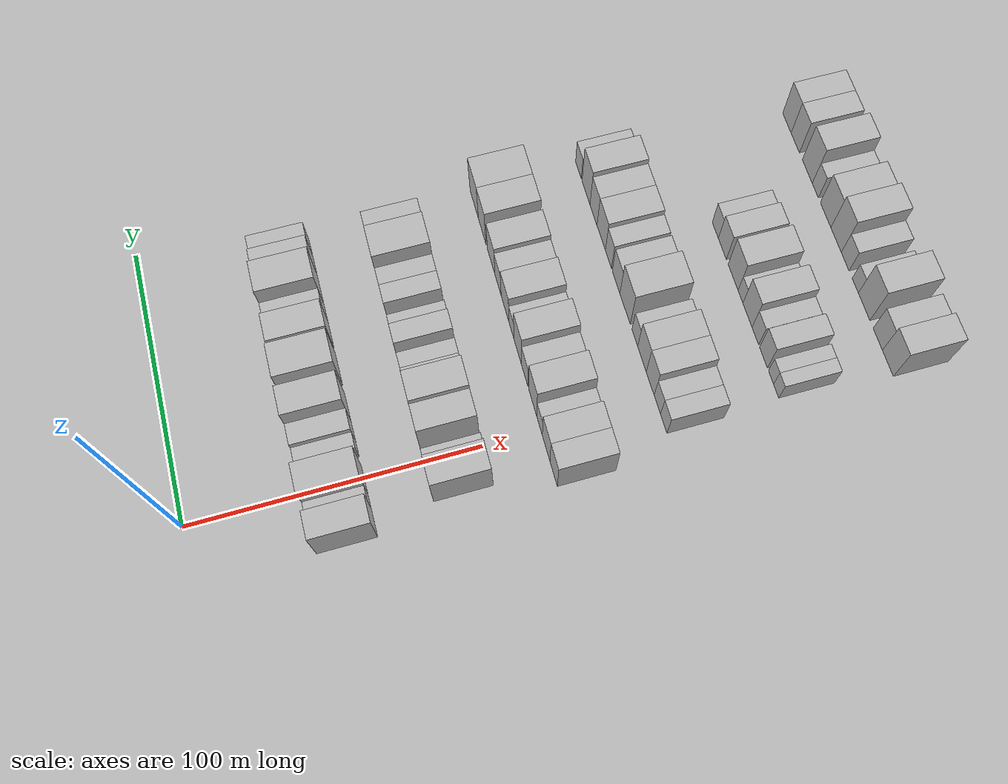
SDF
<sdf version="1.6">
 <world name="default">
  <include><name>ground_plane_1</name><uri>model://HANNAS_ground_plane</uri></include>
  <include>
   <name>ground_plane_2</name>
   <uri>model://HANNAS_ground_plane</uri>
   <pose>100 0 0  0 0 0</pose>
  </include>
  <model name="building_65">
   <static>1</static>
   <pose>50.0000 -15.5206 0 0.000000 0.000000 0.000000</pose>
   <link name="link">
    <pose>0 0 10.50 0 0 0</pose>
    <collision name="collision"><geometry><box><size>20.0000 9.4106 21.0000</size></box></geometry></collision>
    <visual name="visual">
     <cast_shadows>0</cast_shadows>
     <geometry><box><size>20.0000 9.4106 21.0000</size></box></geometry>
     <material>
      <script>
       <uri>model://HANNAS_wall/materials/scripts</uri>
       <uri>model://HANNAS_wall/materials/textures</uri>
       <name>vrc/HANNAS_wall</name>
      </script>
     </material>
    </visual>
   </link>
  </model>
  <model name="building_66">
   <static>1</static>
   <pose>50.0000 -8.2625 0 0.000000 0.000000 0.000000</pose>
   <link name="link">
    <pose>0 0 6.00 0 0 0</pose>
    <collision name="collision"><geometry><box><size>20.0000 5.1057 12.0000</size></box></geometry></collision>
    <visual name="visual">
     <cast_shadows>0</cast_shadows>
     <geometry><box><size>20.0000 5.1057 12.0000</size></box></geometry>
     <material>
      <script>
       <uri>model://HANNAS_wall/materials/scripts</uri>
       <uri>model://HANNAS_wall/materials/textures</uri>
       <name>vrc/HANNAS_wall</name>
      </script>
     </material>
    </visual>
   </link>
  </model>
  <model name="building_67">
   <static>1</static>
   <pose>50.0000 -0.8189 0 0.000000 0.000000 0.000000</pose>
   <link name="link">
    <pose>0 0 12.00 0 0 0</pose>
    <collision name="collision"><geometry><box><size>20.0000 9.7816 24.0000</size></box></geometry></collision>
    <visual name="visual">
     <cast_shadows>0</cast_shadows>
     <geometry><box><size>20.0000 9.7816 24.0000</size></box></geometry>
     <material>
      <script>
       <uri>model://HANNAS_wall/materials/scripts</uri>
       <uri>model://HANNAS_wall/materials/textures</uri>
       <name>vrc/HANNAS_wall</name>
      </script>
     </material>
    </visual>
   </link>
  </model>
  <model name="building_68">
   <static>1</static>
   <pose>50.0000 9.8164 0 0.000000 0.000000 0.000000</pose>
   <link name="link">
    <pose>0 0 6.00 0 0 0</pose>
    <collision name="collision"><geometry><box><size>20.0000 5.4891 12.0000</size></box></geometry></collision>
    <visual name="visual">
     <cast_shadows>0</cast_shadows>
     <geometry><box><size>20.0000 5.4891 12.0000</size></box></geometry>
     <material>
      <script>
       <uri>model://HANNAS_wall/materials/scripts</uri>
       <uri>model://HANNAS_wall/materials/textures</uri>
       <name>vrc/HANNAS_wall</name>
      </script>
     </material>
    </visual>
   </link>
  </model>
  <model name="building_69">
   <static>1</static>
   <pose>50.0000 16.2292 0 0.000000 0.000000 0.000000</pose>
   <link name="link">
    <pose>0 0 7.50 0 0 0</pose>
    <collision name="collision"><geometry><box><size>20.0000 7.3365 15.0000</size></box></geometry></collision>
    <visual name="visual">
     <cast_shadows>0</cast_shadows>
     <geometry><box><size>20.0000 7.3365 15.0000</size></box></geometry>
     <material>
      <script>
       <uri>model://HANNAS_wall/materials/scripts</uri>
       <uri>model://HANNAS_wall/materials/textures</uri>
       <name>vrc/HANNAS_wall</name>
      </script>
     </material>
    </visual>
   </link>
  </model>
  <model name="building_70">
   <static>1</static>
   <pose>50.0000 24.9704 0 0.000000 0.000000 0.000000</pose>
   <link name="link">
    <pose>0 0 12.00 0 0 0</pose>
    <collision name="collision"><geometry><box><size>20.0000 10.1459 24.0000</size></box></geometry></collision>
    <visual name="visual">
     <cast_shadows>0</cast_shadows>
     <geometry><box><size>20.0000 10.1459 24.0000</size></box></geometry>
     <material>
      <script>
       <uri>model://HANNAS_wall/materials/scripts</uri>
       <uri>model://HANNAS_wall/materials/textures</uri>
       <name>vrc/HANNAS_wall</name>
      </script>
     </material>
    </visual>
   </link>
  </model>
  <model name="building_71">
   <static>1</static>
   <pose>50.0000 39.0217 0 0.000000 0.000000 0.000000</pose>
   <link name="link">
    <pose>0 0 12.00 0 0 0</pose>
    <collision name="collision"><geometry><box><size>20.0000 11.9566 24.0000</size></box></geometry></collision>
    <visual name="visual">
     <cast_shadows>0</cast_shadows>
     <geometry><box><size>20.0000 11.9566 24.0000</size></box></geometry>
     <material>
      <script>
       <uri>model://HANNAS_wall/materials/scripts</uri>
       <uri>model://HANNAS_wall/materials/textures</uri>
       <name>vrc/HANNAS_wall</name>
      </script>
     </material>
    </visual>
   </link>
  </model>
  <model name="building_72">
   <static>1</static>
   <pose>50.0000 52.0292 0 0.000000 0.000000 0.000000</pose>
   <link name="link">
    <pose>0 0 10.50 0 0 0</pose>
    <collision name="collision"><geometry><box><size>20.0000 10.0583 21.0000</size></box></geometry></collision>
    <visual name="visual">
     <cast_shadows>0</cast_shadows>
     <geometry><box><size>20.0000 10.0583 21.0000</size></box></geometry>
     <material>
      <script>
       <uri>model://HANNAS_wall/materials/scripts</uri>
       <uri>model://HANNAS_wall/materials/textures</uri>
       <name>vrc/HANNAS_wall</name>
      </script>
     </material>
    </visual>
   </link>
  </model>
  <model name="building_73">
   <static>1</static>
   <pose>50.0000 60.3493 0 0.000000 0.000000 0.000000</pose>
   <link name="link">
    <pose>0 0 7.50 0 0 0</pose>
    <collision name="collision"><geometry><box><size>20.0000 6.5819 15.0000</size></box></geometry></collision>
    <visual name="visual">
     <cast_shadows>0</cast_shadows>
     <geometry><box><size>20.0000 6.5819 15.0000</size></box></geometry>
     <material>
      <script>
       <uri>model://HANNAS_wall/materials/scripts</uri>
       <uri>model://HANNAS_wall/materials/textures</uri>
       <name>vrc/HANNAS_wall</name>
      </script>
     </material>
    </visual>
   </link>
  </model>
  <model name="building_74">
   <static>1</static>
   <pose>50.0000 69.4100 0 0.000000 0.000000 0.000000</pose>
   <link name="link">
    <pose>0 0 12.00 0 0 0</pose>
    <collision name="collision"><geometry><box><size>20.0000 11.5396 24.0000</size></box></geometry></collision>
    <visual name="visual">
     <cast_shadows>0</cast_shadows>
     <geometry><box><size>20.0000 11.5396 24.0000</size></box></geometry>
     <material>
      <script>
       <uri>model://HANNAS_wall/materials/scripts</uri>
       <uri>model://HANNAS_wall/materials/textures</uri>
       <name>vrc/HANNAS_wall</name>
      </script>
     </material>
    </visual>
   </link>
  </model>
  <model name="building_75">
   <static>1</static>
   <pose>50.0000 78.9805 0 0.000000 0.000000 0.000000</pose>
   <link name="link">
    <pose>0 0 9.00 0 0 0</pose>
    <collision name="collision"><geometry><box><size>20.0000 7.6015 18.0000</size></box></geometry></collision>
    <visual name="visual">
     <cast_shadows>0</cast_shadows>
     <geometry><box><size>20.0000 7.6015 18.0000</size></box></geometry>
     <material>
      <script>
       <uri>model://HANNAS_wall/materials/scripts</uri>
       <uri>model://HANNAS_wall/materials/textures</uri>
       <name>vrc/HANNAS_wall</name>
      </script>
     </material>
    </visual>
   </link>
  </model>
  <model name="building_76">
   <static>1</static>
   <pose>50.0000 86.0531 0 0.000000 0.000000 0.000000</pose>
   <link name="link">
    <pose>0 0 7.50 0 0 0</pose>
    <collision name="collision"><geometry><box><size>20.0000 6.5435 15.0000</size></box></geometry></collision>
    <visual name="visual">
     <cast_shadows>0</cast_shadows>
     <geometry><box><size>20.0000 6.5435 15.0000</size></box></geometry>
     <material>
      <script>
       <uri>model://HANNAS_wall/materials/scripts</uri>
       <uri>model://HANNAS_wall/materials/textures</uri>
       <name>vrc/HANNAS_wall</name>
      </script>
     </material>
    </visual>
   </link>
  </model>
  <model name="building_198">
   <static>1</static>
   <pose>90.0000 -8.7622 0 0.000000 0.000000 0.000000</pose>
   <link name="link">
    <pose>0 0 10.50 0 0 0</pose>
    <collision name="collision"><geometry><box><size>20.0000 10.1704 21.0000</size></box></geometry></collision>
    <visual name="visual">
     <cast_shadows>0</cast_shadows>
     <geometry><box><size>20.0000 10.1704 21.0000</size></box></geometry>
     <material>
      <script>
       <uri>model://HANNAS_wall/materials/scripts</uri>
       <uri>model://HANNAS_wall/materials/textures</uri>
       <name>vrc/HANNAS_wall</name>
      </script>
     </material>
    </visual>
   </link>
  </model>
  <model name="building_199">
   <static>1</static>
   <pose>90.0000 -1.2662 0 0.000000 0.000000 0.000000</pose>
   <link name="link">
    <pose>0 0 6.00 0 0 0</pose>
    <collision name="collision"><geometry><box><size>20.0000 4.8215 12.0000</size></box></geometry></collision>
    <visual name="visual">
     <cast_shadows>0</cast_shadows>
     <geometry><box><size>20.0000 4.8215 12.0000</size></box></geometry>
     <material>
      <script>
       <uri>model://HANNAS_wall/materials/scripts</uri>
       <uri>model://HANNAS_wall/materials/textures</uri>
       <name>vrc/HANNAS_wall</name>
      </script>
     </material>
    </visual>
   </link>
  </model>
  <model name="building_200">
   <static>1</static>
   <pose>90.0000 8.8880 0 0.000000 0.000000 0.000000</pose>
   <link name="link">
    <pose>0 0 10.50 0 0 0</pose>
    <collision name="collision"><geometry><box><size>20.0000 9.4868 21.0000</size></box></geometry></collision>
    <visual name="visual">
     <cast_shadows>0</cast_shadows>
     <geometry><box><size>20.0000 9.4868 21.0000</size></box></geometry>
     <material>
      <script>
       <uri>model://HANNAS_wall/materials/scripts</uri>
       <uri>model://HANNAS_wall/materials/textures</uri>
       <name>vrc/HANNAS_wall</name>
      </script>
     </material>
    </visual>
   </link>
  </model>
  <model name="building_201">
   <static>1</static>
   <pose>90.0000 18.9041 0 0.000000 0.000000 0.000000</pose>
   <link name="link">
    <pose>0 0 12.00 0 0 0</pose>
    <collision name="collision"><geometry><box><size>20.0000 10.5455 24.0000</size></box></geometry></collision>
    <visual name="visual">
     <cast_shadows>0</cast_shadows>
     <geometry><box><size>20.0000 10.5455 24.0000</size></box></geometry>
     <material>
      <script>
       <uri>model://HANNAS_wall/materials/scripts</uri>
       <uri>model://HANNAS_wall/materials/textures</uri>
       <name>vrc/HANNAS_wall</name>
      </script>
     </material>
    </visual>
   </link>
  </model>
  <model name="building_202">
   <static>1</static>
   <pose>90.0000 26.9086 0 0.000000 0.000000 0.000000</pose>
   <link name="link">
    <pose>0 0 6.00 0 0 0</pose>
    <collision name="collision"><geometry><box><size>20.0000 5.4635 12.0000</size></box></geometry></collision>
    <visual name="visual">
     <cast_shadows>0</cast_shadows>
     <geometry><box><size>20.0000 5.4635 12.0000</size></box></geometry>
     <material>
      <script>
       <uri>model://HANNAS_wall/materials/scripts</uri>
       <uri>model://HANNAS_wall/materials/textures</uri>
       <name>vrc/HANNAS_wall</name>
      </script>
     </material>
    </visual>
   </link>
  </model>
  <model name="building_203">
   <static>1</static>
   <pose>90.0000 32.4394 0 0.000000 0.000000 0.000000</pose>
   <link name="link">
    <pose>0 0 6.00 0 0 0</pose>
    <collision name="collision"><geometry><box><size>20.0000 5.5982 12.0000</size></box></geometry></collision>
    <visual name="visual">
     <cast_shadows>0</cast_shadows>
     <geometry><box><size>20.0000 5.5982 12.0000</size></box></geometry>
     <material>
      <script>
       <uri>model://HANNAS_wall/materials/scripts</uri>
       <uri>model://HANNAS_wall/materials/textures</uri>
       <name>vrc/HANNAS_wall</name>
      </script>
     </material>
    </visual>
   </link>
  </model>
  <model name="building_204">
   <static>1</static>
   <pose>90.0000 39.8442 0 0.000000 0.000000 0.000000</pose>
   <link name="link">
    <pose>0 0 9.00 0 0 0</pose>
    <collision name="collision"><geometry><box><size>20.0000 7.2114 18.0000</size></box></geometry></collision>
    <visual name="visual">
     <cast_shadows>0</cast_shadows>
     <geometry><box><size>20.0000 7.2114 18.0000</size></box></geometry>
     <material>
      <script>
       <uri>model://HANNAS_wall/materials/scripts</uri>
       <uri>model://HANNAS_wall/materials/textures</uri>
       <name>vrc/HANNAS_wall</name>
      </script>
     </material>
    </visual>
   </link>
  </model>
  <model name="building_205">
   <static>1</static>
   <pose>90.0000 46.3760 0 0.000000 0.000000 0.000000</pose>
   <link name="link">
    <pose>0 0 6.00 0 0 0</pose>
    <collision name="collision"><geometry><box><size>20.0000 5.8521 12.0000</size></box></geometry></collision>
    <visual name="visual">
     <cast_shadows>0</cast_shadows>
     <geometry><box><size>20.0000 5.8521 12.0000</size></box></geometry>
     <material>
      <script>
       <uri>model://HANNAS_wall/materials/scripts</uri>
       <uri>model://HANNAS_wall/materials/textures</uri>
       <name>vrc/HANNAS_wall</name>
      </script>
     </material>
    </visual>
   </link>
  </model>
  <model name="building_206">
   <static>1</static>
   <pose>90.0000 55.8009 0 0.000000 0.000000 0.000000</pose>
   <link name="link">
    <pose>0 0 7.50 0 0 0</pose>
    <collision name="collision"><geometry><box><size>20.0000 6.9977 15.0000</size></box></geometry></collision>
    <visual name="visual">
     <cast_shadows>0</cast_shadows>
     <geometry><box><size>20.0000 6.9977 15.0000</size></box></geometry>
     <material>
      <script>
       <uri>model://HANNAS_wall/materials/scripts</uri>
       <uri>model://HANNAS_wall/materials/textures</uri>
       <name>vrc/HANNAS_wall</name>
      </script>
     </material>
    </visual>
   </link>
  </model>
  <model name="building_207">
   <static>1</static>
   <pose>90.0000 62.5224 0 0.000000 0.000000 0.000000</pose>
   <link name="link">
    <pose>0 0 7.50 0 0 0</pose>
    <collision name="collision"><geometry><box><size>20.0000 6.4453 15.0000</size></box></geometry></collision>
    <visual name="visual">
     <cast_shadows>0</cast_shadows>
     <geometry><box><size>20.0000 6.4453 15.0000</size></box></geometry>
     <material>
      <script>
       <uri>model://HANNAS_wall/materials/scripts</uri>
       <uri>model://HANNAS_wall/materials/textures</uri>
       <name>vrc/HANNAS_wall</name>
      </script>
     </material>
    </visual>
   </link>
  </model>
  <model name="building_208">
   <static>1</static>
   <pose>90.0000 71.6811 0 0.000000 0.000000 0.000000</pose>
   <link name="link">
    <pose>0 0 12.00 0 0 0</pose>
    <collision name="collision"><geometry><box><size>20.0000 11.8721 24.0000</size></box></geometry></collision>
    <visual name="visual">
     <cast_shadows>0</cast_shadows>
     <geometry><box><size>20.0000 11.8721 24.0000</size></box></geometry>
     <material>
      <script>
       <uri>model://HANNAS_wall/materials/scripts</uri>
       <uri>model://HANNAS_wall/materials/textures</uri>
       <name>vrc/HANNAS_wall</name>
      </script>
     </material>
    </visual>
   </link>
  </model>
  <model name="building_209">
   <static>1</static>
   <pose>90.0000 81.9590 0 0.000000 0.000000 0.000000</pose>
   <link name="link">
    <pose>0 0 9.00 0 0 0</pose>
    <collision name="collision"><geometry><box><size>20.0000 8.6837 18.0000</size></box></geometry></collision>
    <visual name="visual">
     <cast_shadows>0</cast_shadows>
     <geometry><box><size>20.0000 8.6837 18.0000</size></box></geometry>
     <material>
      <script>
       <uri>model://HANNAS_wall/materials/scripts</uri>
       <uri>model://HANNAS_wall/materials/textures</uri>
       <name>vrc/HANNAS_wall</name>
      </script>
     </material>
    </visual>
   </link>
  </model>
  <model name="building_337">
   <static>1</static>
   <pose>130.0000 -15.4126 0 0.000000 0.000000 0.000000</pose>
   <link name="link">
    <pose>0 0 10.50 0 0 0</pose>
    <collision name="collision"><geometry><box><size>20.0000 8.7202 21.0000</size></box></geometry></collision>
    <visual name="visual">
     <cast_shadows>0</cast_shadows>
     <geometry><box><size>20.0000 8.7202 21.0000</size></box></geometry>
     <material>
      <script>
       <uri>model://HANNAS_wall/materials/scripts</uri>
       <uri>model://HANNAS_wall/materials/textures</uri>
       <name>vrc/HANNAS_wall</name>
      </script>
     </material>
    </visual>
   </link>
  </model>
  <model name="building_338">
   <static>1</static>
   <pose>130.0000 -6.5055 0 0.000000 0.000000 0.000000</pose>
   <link name="link">
    <pose>0 0 10.50 0 0 0</pose>
    <collision name="collision"><geometry><box><size>20.0000 9.0940 21.0000</size></box></geometry></collision>
    <visual name="visual">
     <cast_shadows>0</cast_shadows>
     <geometry><box><size>20.0000 9.0940 21.0000</size></box></geometry>
     <material>
      <script>
       <uri>model://HANNAS_wall/materials/scripts</uri>
       <uri>model://HANNAS_wall/materials/textures</uri>
       <name>vrc/HANNAS_wall</name>
      </script>
     </material>
    </visual>
   </link>
  </model>
  <model name="building_339">
   <static>1</static>
   <pose>130.0000 1.4225 0 0.000000 0.000000 0.000000</pose>
   <link name="link">
    <pose>0 0 7.50 0 0 0</pose>
    <collision name="collision"><geometry><box><size>20.0000 6.7620 15.0000</size></box></geometry></collision>
    <visual name="visual">
     <cast_shadows>0</cast_shadows>
     <geometry><box><size>20.0000 6.7620 15.0000</size></box></geometry>
     <material>
      <script>
       <uri>model://HANNAS_wall/materials/scripts</uri>
       <uri>model://HANNAS_wall/materials/textures</uri>
       <name>vrc/HANNAS_wall</name>
      </script>
     </material>
    </visual>
   </link>
  </model>
  <model name="building_340">
   <static>1</static>
   <pose>130.0000 9.8139 0 0.000000 0.000000 0.000000</pose>
   <link name="link">
    <pose>0 0 12.00 0 0 0</pose>
    <collision name="collision"><geometry><box><size>20.0000 10.0209 24.0000</size></box></geometry></collision>
    <visual name="visual">
     <cast_shadows>0</cast_shadows>
     <geometry><box><size>20.0000 10.0209 24.0000</size></box></geometry>
     <material>
      <script>
       <uri>model://HANNAS_wall/materials/scripts</uri>
       <uri>model://HANNAS_wall/materials/textures</uri>
       <name>vrc/HANNAS_wall</name>
      </script>
     </material>
    </visual>
   </link>
  </model>
  <model name="building_341">
   <static>1</static>
   <pose>130.0000 19.7819 0 0.000000 0.000000 0.000000</pose>
   <link name="link">
    <pose>0 0 9.00 0 0 0</pose>
    <collision name="collision"><geometry><box><size>20.0000 7.9150 18.0000</size></box></geometry></collision>
    <visual name="visual">
     <cast_shadows>0</cast_shadows>
     <geometry><box><size>20.0000 7.9150 18.0000</size></box></geometry>
     <material>
      <script>
       <uri>model://HANNAS_wall/materials/scripts</uri>
       <uri>model://HANNAS_wall/materials/textures</uri>
       <name>vrc/HANNAS_wall</name>
      </script>
     </material>
    </visual>
   </link>
  </model>
  <model name="building_342">
   <static>1</static>
   <pose>130.0000 28.6364 0 0.000000 0.000000 0.000000</pose>
   <link name="link">
    <pose>0 0 12.00 0 0 0</pose>
    <collision name="collision"><geometry><box><size>20.0000 9.7940 24.0000</size></box></geometry></collision>
    <visual name="visual">
     <cast_shadows>0</cast_shadows>
     <geometry><box><size>20.0000 9.7940 24.0000</size></box></geometry>
     <material>
      <script>
       <uri>model://HANNAS_wall/materials/scripts</uri>
       <uri>model://HANNAS_wall/materials/textures</uri>
       <name>vrc/HANNAS_wall</name>
      </script>
     </material>
    </visual>
   </link>
  </model>
  <model name="building_343">
   <static>1</static>
   <pose>130.0000 36.7452 0 0.000000 0.000000 0.000000</pose>
   <link name="link">
    <pose>0 0 7.50 0 0 0</pose>
    <collision name="collision"><geometry><box><size>20.0000 6.4236 15.0000</size></box></geometry></collision>
    <visual name="visual">
     <cast_shadows>0</cast_shadows>
     <geometry><box><size>20.0000 6.4236 15.0000</size></box></geometry>
     <material>
      <script>
       <uri>model://HANNAS_wall/materials/scripts</uri>
       <uri>model://HANNAS_wall/materials/textures</uri>
       <name>vrc/HANNAS_wall</name>
      </script>
     </material>
    </visual>
   </link>
  </model>
  <model name="building_344">
   <static>1</static>
   <pose>130.0000 45.1770 0 0.000000 0.000000 0.000000</pose>
   <link name="link">
    <pose>0 0 10.50 0 0 0</pose>
    <collision name="collision"><geometry><box><size>20.0000 10.4400 21.0000</size></box></geometry></collision>
    <visual name="visual">
     <cast_shadows>0</cast_shadows>
     <geometry><box><size>20.0000 10.4400 21.0000</size></box></geometry>
     <material>
      <script>
       <uri>model://HANNAS_wall/materials/scripts</uri>
       <uri>model://HANNAS_wall/materials/textures</uri>
       <name>vrc/HANNAS_wall</name>
      </script>
     </material>
    </visual>
   </link>
  </model>
  <model name="building_345">
   <static>1</static>
   <pose>130.0000 54.5435 0 0.000000 0.000000 0.000000</pose>
   <link name="link">
    <pose>0 0 9.00 0 0 0</pose>
    <collision name="collision"><geometry><box><size>20.0000 8.2930 18.0000</size></box></geometry></collision>
    <visual name="visual">
     <cast_shadows>0</cast_shadows>
     <geometry><box><size>20.0000 8.2930 18.0000</size></box></geometry>
     <material>
      <script>
       <uri>model://HANNAS_wall/materials/scripts</uri>
       <uri>model://HANNAS_wall/materials/textures</uri>
       <name>vrc/HANNAS_wall</name>
      </script>
     </material>
    </visual>
   </link>
  </model>
  <model name="building_346">
   <static>1</static>
   <pose>130.0000 63.7832 0 0.000000 0.000000 0.000000</pose>
   <link name="link">
    <pose>0 0 10.50 0 0 0</pose>
    <collision name="collision"><geometry><box><size>20.0000 10.1864 21.0000</size></box></geometry></collision>
    <visual name="visual">
     <cast_shadows>0</cast_shadows>
     <geometry><box><size>20.0000 10.1864 21.0000</size></box></geometry>
     <material>
      <script>
       <uri>model://HANNAS_wall/materials/scripts</uri>
       <uri>model://HANNAS_wall/materials/textures</uri>
       <name>vrc/HANNAS_wall</name>
      </script>
     </material>
    </visual>
   </link>
  </model>
  <model name="building_347">
   <static>1</static>
   <pose>130.0000 76.1456 0 0.000000 0.000000 0.000000</pose>
   <link name="link">
    <pose>0 0 12.00 0 0 0</pose>
    <collision name="collision"><geometry><box><size>20.0000 10.5384 24.0000</size></box></geometry></collision>
    <visual name="visual">
     <cast_shadows>0</cast_shadows>
     <geometry><box><size>20.0000 10.5384 24.0000</size></box></geometry>
     <material>
      <script>
       <uri>model://HANNAS_wall/materials/scripts</uri>
       <uri>model://HANNAS_wall/materials/textures</uri>
       <name>vrc/HANNAS_wall</name>
      </script>
     </material>
    </visual>
   </link>
  </model>
  <model name="building_348">
   <static>1</static>
   <pose>130.0000 87.3826 0 0.000000 0.000000 0.000000</pose>
   <link name="link">
    <pose>0 0 12.00 0 0 0</pose>
    <collision name="collision"><geometry><box><size>20.0000 11.9356 24.0000</size></box></geometry></collision>
    <visual name="visual">
     <cast_shadows>0</cast_shadows>
     <geometry><box><size>20.0000 11.9356 24.0000</size></box></geometry>
     <material>
      <script>
       <uri>model://HANNAS_wall/materials/scripts</uri>
       <uri>model://HANNAS_wall/materials/textures</uri>
       <name>vrc/HANNAS_wall</name>
      </script>
     </material>
    </visual>
   </link>
  </model>
  <model name="building_475">
   <static>1</static>
   <pose>170.0000 -8.8202 0 0.000000 0.000000 0.000000</pose>
   <link name="link">
    <pose>0 0 7.50 0 0 0</pose>
    <collision name="collision"><geometry><box><size>20.0000 6.8759 15.0000</size></box></geometry></collision>
    <visual name="visual">
     <cast_shadows>0</cast_shadows>
     <geometry><box><size>20.0000 6.8759 15.0000</size></box></geometry>
     <material>
      <script>
       <uri>model://HANNAS_wall/materials/scripts</uri>
       <uri>model://HANNAS_wall/materials/textures</uri>
       <name>vrc/HANNAS_wall</name>
      </script>
     </material>
    </visual>
   </link>
  </model>
  <model name="building_476">
   <static>1</static>
   <pose>170.0000 -1.9698 0 0.000000 0.000000 0.000000</pose>
   <link name="link">
    <pose>0 0 7.50 0 0 0</pose>
    <collision name="collision"><geometry><box><size>20.0000 6.8249 15.0000</size></box></geometry></collision>
    <visual name="visual">
     <cast_shadows>0</cast_shadows>
     <geometry><box><size>20.0000 6.8249 15.0000</size></box></geometry>
     <material>
      <script>
       <uri>model://HANNAS_wall/materials/scripts</uri>
       <uri>model://HANNAS_wall/materials/textures</uri>
       <name>vrc/HANNAS_wall</name>
      </script>
     </material>
    </visual>
   </link>
  </model>
  <model name="building_477">
   <static>1</static>
   <pose>170.0000 5.7916 0 0.000000 0.000000 0.000000</pose>
   <link name="link">
    <pose>0 0 10.50 0 0 0</pose>
    <collision name="collision"><geometry><box><size>20.0000 8.6978 21.0000</size></box></geometry></collision>
    <visual name="visual">
     <cast_shadows>0</cast_shadows>
     <geometry><box><size>20.0000 8.6978 21.0000</size></box></geometry>
     <material>
      <script>
       <uri>model://HANNAS_wall/materials/scripts</uri>
       <uri>model://HANNAS_wall/materials/textures</uri>
       <name>vrc/HANNAS_wall</name>
      </script>
     </material>
    </visual>
   </link>
  </model>
  <model name="building_478">
   <static>1</static>
   <pose>170.0000 14.9203 0 0.000000 0.000000 0.000000</pose>
   <link name="link">
    <pose>0 0 10.50 0 0 0</pose>
    <collision name="collision"><geometry><box><size>20.0000 9.5596 21.0000</size></box></geometry></collision>
    <visual name="visual">
     <cast_shadows>0</cast_shadows>
     <geometry><box><size>20.0000 9.5596 21.0000</size></box></geometry>
     <material>
      <script>
       <uri>model://HANNAS_wall/materials/scripts</uri>
       <uri>model://HANNAS_wall/materials/textures</uri>
       <name>vrc/HANNAS_wall</name>
      </script>
     </material>
    </visual>
   </link>
  </model>
  <model name="building_479">
   <static>1</static>
   <pose>170.0000 22.9362 0 0.000000 0.000000 0.000000</pose>
   <link name="link">
    <pose>0 0 7.50 0 0 0</pose>
    <collision name="collision"><geometry><box><size>20.0000 6.4722 15.0000</size></box></geometry></collision>
    <visual name="visual">
     <cast_shadows>0</cast_shadows>
     <geometry><box><size>20.0000 6.4722 15.0000</size></box></geometry>
     <material>
      <script>
       <uri>model://HANNAS_wall/materials/scripts</uri>
       <uri>model://HANNAS_wall/materials/textures</uri>
       <name>vrc/HANNAS_wall</name>
      </script>
     </material>
    </visual>
   </link>
  </model>
  <model name="building_480">
   <static>1</static>
   <pose>170.0000 34.1639 0 0.000000 0.000000 0.000000</pose>
   <link name="link">
    <pose>0 0 12.00 0 0 0</pose>
    <collision name="collision"><geometry><box><size>20.0000 11.9832 24.0000</size></box></geometry></collision>
    <visual name="visual">
     <cast_shadows>0</cast_shadows>
     <geometry><box><size>20.0000 11.9832 24.0000</size></box></geometry>
     <material>
      <script>
       <uri>model://HANNAS_wall/materials/scripts</uri>
       <uri>model://HANNAS_wall/materials/textures</uri>
       <name>vrc/HANNAS_wall</name>
      </script>
     </material>
    </visual>
   </link>
  </model>
  <model name="building_481">
   <static>1</static>
   <pose>170.0000 44.6378 0 0.000000 0.000000 0.000000</pose>
   <link name="link">
    <pose>0 0 9.00 0 0 0</pose>
    <collision name="collision"><geometry><box><size>20.0000 8.9645 18.0000</size></box></geometry></collision>
    <visual name="visual">
     <cast_shadows>0</cast_shadows>
     <geometry><box><size>20.0000 8.9645 18.0000</size></box></geometry>
     <material>
      <script>
       <uri>model://HANNAS_wall/materials/scripts</uri>
       <uri>model://HANNAS_wall/materials/textures</uri>
       <name>vrc/HANNAS_wall</name>
      </script>
     </material>
    </visual>
   </link>
  </model>
  <model name="building_482">
   <static>1</static>
   <pose>170.0000 53.7424 0 0.000000 0.000000 0.000000</pose>
   <link name="link">
    <pose>0 0 9.00 0 0 0</pose>
    <collision name="collision"><geometry><box><size>20.0000 7.2447 18.0000</size></box></geometry></collision>
    <visual name="visual">
     <cast_shadows>0</cast_shadows>
     <geometry><box><size>20.0000 7.2447 18.0000</size></box></geometry>
     <material>
      <script>
       <uri>model://HANNAS_wall/materials/scripts</uri>
       <uri>model://HANNAS_wall/materials/textures</uri>
       <name>vrc/HANNAS_wall</name>
      </script>
     </material>
    </visual>
   </link>
  </model>
  <model name="building_483">
   <static>1</static>
   <pose>170.0000 62.4559 0 0.000000 0.000000 0.000000</pose>
   <link name="link">
    <pose>0 0 10.50 0 0 0</pose>
    <collision name="collision"><geometry><box><size>20.0000 10.1824 21.0000</size></box></geometry></collision>
    <visual name="visual">
     <cast_shadows>0</cast_shadows>
     <geometry><box><size>20.0000 10.1824 21.0000</size></box></geometry>
     <material>
      <script>
       <uri>model://HANNAS_wall/materials/scripts</uri>
       <uri>model://HANNAS_wall/materials/textures</uri>
       <name>vrc/HANNAS_wall</name>
      </script>
     </material>
    </visual>
   </link>
  </model>
  <model name="building_484">
   <static>1</static>
   <pose>170.0000 71.8766 0 0.000000 0.000000 0.000000</pose>
   <link name="link">
    <pose>0 0 10.50 0 0 0</pose>
    <collision name="collision"><geometry><box><size>20.0000 8.6589 21.0000</size></box></geometry></collision>
    <visual name="visual">
     <cast_shadows>0</cast_shadows>
     <geometry><box><size>20.0000 8.6589 21.0000</size></box></geometry>
     <material>
      <script>
       <uri>model://HANNAS_wall/materials/scripts</uri>
       <uri>model://HANNAS_wall/materials/textures</uri>
       <name>vrc/HANNAS_wall</name>
      </script>
     </material>
    </visual>
   </link>
  </model>
  <model name="building_485">
   <static>1</static>
   <pose>170.0000 81.1989 0 0.000000 0.000000 0.000000</pose>
   <link name="link">
    <pose>0 0 12.00 0 0 0</pose>
    <collision name="collision"><geometry><box><size>20.0000 9.9857 24.0000</size></box></geometry></collision>
    <visual name="visual">
     <cast_shadows>0</cast_shadows>
     <geometry><box><size>20.0000 9.9857 24.0000</size></box></geometry>
     <material>
      <script>
       <uri>model://HANNAS_wall/materials/scripts</uri>
       <uri>model://HANNAS_wall/materials/textures</uri>
       <name>vrc/HANNAS_wall</name>
      </script>
     </material>
    </visual>
   </link>
  </model>
  <model name="building_486">
   <static>1</static>
   <pose>170.0000 90.8012 0 0.000000 0.000000 0.000000</pose>
   <link name="link">
    <pose>0 0 7.50 0 0 0</pose>
    <collision name="collision"><geometry><box><size>20.0000 7.2189 15.0000</size></box></geometry></collision>
    <visual name="visual">
     <cast_shadows>0</cast_shadows>
     <geometry><box><size>20.0000 7.2189 15.0000</size></box></geometry>
     <material>
      <script>
       <uri>model://HANNAS_wall/materials/scripts</uri>
       <uri>model://HANNAS_wall/materials/textures</uri>
       <name>vrc/HANNAS_wall</name>
      </script>
     </material>
    </visual>
   </link>
  </model>
  <model name="building_612">
   <static>1</static>
   <pose>210.0000 -8.1552 0 0.000000 0.000000 0.000000</pose>
   <link name="link">
    <pose>0 0 6.00 0 0 0</pose>
    <collision name="collision"><geometry><box><size>20.0000 5.0322 12.0000</size></box></geometry></collision>
    <visual name="visual">
     <cast_shadows>0</cast_shadows>
     <geometry><box><size>20.0000 5.0322 12.0000</size></box></geometry>
     <material>
      <script>
       <uri>model://HANNAS_wall/materials/scripts</uri>
       <uri>model://HANNAS_wall/materials/textures</uri>
       <name>vrc/HANNAS_wall</name>
      </script>
     </material>
    </visual>
   </link>
  </model>
  <model name="building_613">
   <static>1</static>
   <pose>210.0000 -3.1044 0 0.000000 0.000000 0.000000</pose>
   <link name="link">
    <pose>0 0 6.00 0 0 0</pose>
    <collision name="collision"><geometry><box><size>20.0000 5.0694 12.0000</size></box></geometry></collision>
    <visual name="visual">
     <cast_shadows>0</cast_shadows>
     <geometry><box><size>20.0000 5.0694 12.0000</size></box></geometry>
     <material>
      <script>
       <uri>model://HANNAS_wall/materials/scripts</uri>
       <uri>model://HANNAS_wall/materials/textures</uri>
       <name>vrc/HANNAS_wall</name>
      </script>
     </material>
    </visual>
   </link>
  </model>
  <model name="building_614">
   <static>1</static>
   <pose>210.0000 4.3063 0 0.000000 0.000000 0.000000</pose>
   <link name="link">
    <pose>0 0 9.00 0 0 0</pose>
    <collision name="collision"><geometry><box><size>20.0000 7.7520 18.0000</size></box></geometry></collision>
    <visual name="visual">
     <cast_shadows>0</cast_shadows>
     <geometry><box><size>20.0000 7.7520 18.0000</size></box></geometry>
     <material>
      <script>
       <uri>model://HANNAS_wall/materials/scripts</uri>
       <uri>model://HANNAS_wall/materials/textures</uri>
       <name>vrc/HANNAS_wall</name>
      </script>
     </material>
    </visual>
   </link>
  </model>
  <model name="building_615">
   <static>1</static>
   <pose>210.0000 12.5054 0 0.000000 0.000000 0.000000</pose>
   <link name="link">
    <pose>0 0 7.50 0 0 0</pose>
    <collision name="collision"><geometry><box><size>20.0000 6.6463 15.0000</size></box></geometry></collision>
    <visual name="visual">
     <cast_shadows>0</cast_shadows>
     <geometry><box><size>20.0000 6.6463 15.0000</size></box></geometry>
     <material>
      <script>
       <uri>model://HANNAS_wall/materials/scripts</uri>
       <uri>model://HANNAS_wall/materials/textures</uri>
       <name>vrc/HANNAS_wall</name>
      </script>
     </material>
    </visual>
   </link>
  </model>
  <model name="building_616">
   <static>1</static>
   <pose>210.0000 20.5182 0 0.000000 0.000000 0.000000</pose>
   <link name="link">
    <pose>0 0 10.50 0 0 0</pose>
    <collision name="collision"><geometry><box><size>20.0000 9.3793 21.0000</size></box></geometry></collision>
    <visual name="visual">
     <cast_shadows>0</cast_shadows>
     <geometry><box><size>20.0000 9.3793 21.0000</size></box></geometry>
     <material>
      <script>
       <uri>model://HANNAS_wall/materials/scripts</uri>
       <uri>model://HANNAS_wall/materials/textures</uri>
       <name>vrc/HANNAS_wall</name>
      </script>
     </material>
    </visual>
   </link>
  </model>
  <model name="building_617">
   <static>1</static>
   <pose>210.0000 27.7074 0 0.000000 0.000000 0.000000</pose>
   <link name="link">
    <pose>0 0 6.00 0 0 0</pose>
    <collision name="collision"><geometry><box><size>20.0000 4.9991 12.0000</size></box></geometry></collision>
    <visual name="visual">
     <cast_shadows>0</cast_shadows>
     <geometry><box><size>20.0000 4.9991 12.0000</size></box></geometry>
     <material>
      <script>
       <uri>model://HANNAS_wall/materials/scripts</uri>
       <uri>model://HANNAS_wall/materials/textures</uri>
       <name>vrc/HANNAS_wall</name>
      </script>
     </material>
    </visual>
   </link>
  </model>
  <model name="building_618">
   <static>1</static>
   <pose>210.0000 35.3854 0 0.000000 0.000000 0.000000</pose>
   <link name="link">
    <pose>0 0 10.50 0 0 0</pose>
    <collision name="collision"><geometry><box><size>20.0000 10.3568 21.0000</size></box></geometry></collision>
    <visual name="visual">
     <cast_shadows>0</cast_shadows>
     <geometry><box><size>20.0000 10.3568 21.0000</size></box></geometry>
     <material>
      <script>
       <uri>model://HANNAS_wall/materials/scripts</uri>
       <uri>model://HANNAS_wall/materials/textures</uri>
       <name>vrc/HANNAS_wall</name>
      </script>
     </material>
    </visual>
   </link>
  </model>
  <model name="building_619">
   <static>1</static>
   <pose>210.0000 46.8264 0 0.000000 0.000000 0.000000</pose>
   <link name="link">
    <pose>0 0 9.00 0 0 0</pose>
    <collision name="collision"><geometry><box><size>20.0000 8.5252 18.0000</size></box></geometry></collision>
    <visual name="visual">
     <cast_shadows>0</cast_shadows>
     <geometry><box><size>20.0000 8.5252 18.0000</size></box></geometry>
     <material>
      <script>
       <uri>model://HANNAS_wall/materials/scripts</uri>
       <uri>model://HANNAS_wall/materials/textures</uri>
       <name>vrc/HANNAS_wall</name>
      </script>
     </material>
    </visual>
   </link>
  </model>
  <model name="building_620">
   <static>1</static>
   <pose>210.0000 54.3995 0 0.000000 0.000000 0.000000</pose>
   <link name="link">
    <pose>0 0 7.50 0 0 0</pose>
    <collision name="collision"><geometry><box><size>20.0000 6.6210 15.0000</size></box></geometry></collision>
    <visual name="visual">
     <cast_shadows>0</cast_shadows>
     <geometry><box><size>20.0000 6.6210 15.0000</size></box></geometry>
     <material>
      <script>
       <uri>model://HANNAS_wall/materials/scripts</uri>
       <uri>model://HANNAS_wall/materials/textures</uri>
       <name>vrc/HANNAS_wall</name>
      </script>
     </material>
    </visual>
   </link>
  </model>
  <model name="building_745">
   <static>1</static>
   <pose>250.0000 -8.9408 0 0.000000 0.000000 0.000000</pose>
   <link name="link">
    <pose>0 0 10.50 0 0 0</pose>
    <collision name="collision"><geometry><box><size>20.0000 9.7865 21.0000</size></box></geometry></collision>
    <visual name="visual">
     <cast_shadows>0</cast_shadows>
     <geometry><box><size>20.0000 9.7865 21.0000</size></box></geometry>
     <material>
      <script>
       <uri>model://HANNAS_wall/materials/scripts</uri>
       <uri>model://HANNAS_wall/materials/textures</uri>
       <name>vrc/HANNAS_wall</name>
      </script>
     </material>
    </visual>
   </link>
  </model>
  <model name="building_746">
   <static>1</static>
   <pose>250.0000 0.1484 0 0.000000 0.000000 0.000000</pose>
   <link name="link">
    <pose>0 0 9.00 0 0 0</pose>
    <collision name="collision"><geometry><box><size>20.0000 8.3920 18.0000</size></box></geometry></collision>
    <visual name="visual">
     <cast_shadows>0</cast_shadows>
     <geometry><box><size>20.0000 8.3920 18.0000</size></box></geometry>
     <material>
      <script>
       <uri>model://HANNAS_wall/materials/scripts</uri>
       <uri>model://HANNAS_wall/materials/textures</uri>
       <name>vrc/HANNAS_wall</name>
      </script>
     </material>
    </visual>
   </link>
  </model>
  <model name="building_747">
   <static>1</static>
   <pose>250.0000 12.6691 0 0.000000 0.000000 0.000000</pose>
   <link name="link">
    <pose>0 0 12.00 0 0 0</pose>
    <collision name="collision"><geometry><box><size>20.0000 10.6494 24.0000</size></box></geometry></collision>
    <visual name="visual">
     <cast_shadows>0</cast_shadows>
     <geometry><box><size>20.0000 10.6494 24.0000</size></box></geometry>
     <material>
      <script>
       <uri>model://HANNAS_wall/materials/scripts</uri>
       <uri>model://HANNAS_wall/materials/textures</uri>
       <name>vrc/HANNAS_wall</name>
      </script>
     </material>
    </visual>
   </link>
  </model>
  <model name="building_748">
   <static>1</static>
   <pose>250.0000 20.9193 0 0.000000 0.000000 0.000000</pose>
   <link name="link">
    <pose>0 0 6.00 0 0 0</pose>
    <collision name="collision"><geometry><box><size>20.0000 5.8510 12.0000</size></box></geometry></collision>
    <visual name="visual">
     <cast_shadows>0</cast_shadows>
     <geometry><box><size>20.0000 5.8510 12.0000</size></box></geometry>
     <material>
      <script>
       <uri>model://HANNAS_wall/materials/scripts</uri>
       <uri>model://HANNAS_wall/materials/textures</uri>
       <name>vrc/HANNAS_wall</name>
      </script>
     </material>
    </visual>
   </link>
  </model>
  <model name="building_749">
   <static>1</static>
   <pose>250.0000 30.5416 0 0.000000 0.000000 0.000000</pose>
   <link name="link">
    <pose>0 0 7.50 0 0 0</pose>
    <collision name="collision"><geometry><box><size>20.0000 7.3935 15.0000</size></box></geometry></collision>
    <visual name="visual">
     <cast_shadows>0</cast_shadows>
     <geometry><box><size>20.0000 7.3935 15.0000</size></box></geometry>
     <material>
      <script>
       <uri>model://HANNAS_wall/materials/scripts</uri>
       <uri>model://HANNAS_wall/materials/textures</uri>
       <name>vrc/HANNAS_wall</name>
      </script>
     </material>
    </visual>
   </link>
  </model>
  <model name="building_750">
   <static>1</static>
   <pose>250.0000 39.3080 0 0.000000 0.000000 0.000000</pose>
   <link name="link">
    <pose>0 0 12.00 0 0 0</pose>
    <collision name="collision"><geometry><box><size>20.0000 10.1394 24.0000</size></box></geometry></collision>
    <visual name="visual">
     <cast_shadows>0</cast_shadows>
     <geometry><box><size>20.0000 10.1394 24.0000</size></box></geometry>
     <material>
      <script>
       <uri>model://HANNAS_wall/materials/scripts</uri>
       <uri>model://HANNAS_wall/materials/textures</uri>
       <name>vrc/HANNAS_wall</name>
      </script>
     </material>
    </visual>
   </link>
  </model>
  <model name="building_751">
   <static>1</static>
   <pose>250.0000 49.6039 0 0.000000 0.000000 0.000000</pose>
   <link name="link">
    <pose>0 0 10.50 0 0 0</pose>
    <collision name="collision"><geometry><box><size>20.0000 10.4523 21.0000</size></box></geometry></collision>
    <visual name="visual">
     <cast_shadows>0</cast_shadows>
     <geometry><box><size>20.0000 10.4523 21.0000</size></box></geometry>
     <material>
      <script>
       <uri>model://HANNAS_wall/materials/scripts</uri>
       <uri>model://HANNAS_wall/materials/textures</uri>
       <name>vrc/HANNAS_wall</name>
      </script>
     </material>
    </visual>
   </link>
  </model>
  <model name="building_752">
   <static>1</static>
   <pose>250.0000 59.9023 0 0.000000 0.000000 0.000000</pose>
   <link name="link">
    <pose>0 0 7.50 0 0 0</pose>
    <collision name="collision"><geometry><box><size>20.0000 6.1446 15.0000</size></box></geometry></collision>
    <visual name="visual">
     <cast_shadows>0</cast_shadows>
     <geometry><box><size>20.0000 6.1446 15.0000</size></box></geometry>
     <material>
      <script>
       <uri>model://HANNAS_wall/materials/scripts</uri>
       <uri>model://HANNAS_wall/materials/textures</uri>
       <name>vrc/HANNAS_wall</name>
      </script>
     </material>
    </visual>
   </link>
  </model>
  <model name="building_753">
   <static>1</static>
   <pose>250.0000 68.0469 0 0.000000 0.000000 0.000000</pose>
   <link name="link">
    <pose>0 0 12.00 0 0 0</pose>
    <collision name="collision"><geometry><box><size>20.0000 10.1447 24.0000</size></box></geometry></collision>
    <visual name="visual">
     <cast_shadows>0</cast_shadows>
     <geometry><box><size>20.0000 10.1447 24.0000</size></box></geometry>
     <material>
      <script>
       <uri>model://HANNAS_wall/materials/scripts</uri>
       <uri>model://HANNAS_wall/materials/textures</uri>
       <name>vrc/HANNAS_wall</name>
      </script>
     </material>
    </visual>
   </link>
  </model>
  <model name="building_754">
   <static>1</static>
   <pose>250.0000 80.4238 0 0.000000 0.000000 0.000000</pose>
   <link name="link">
    <pose>0 0 10.50 0 0 0</pose>
    <collision name="collision"><geometry><box><size>20.0000 8.6091 21.0000</size></box></geometry></collision>
    <visual name="visual">
     <cast_shadows>0</cast_shadows>
     <geometry><box><size>20.0000 8.6091 21.0000</size></box></geometry>
     <material>
      <script>
       <uri>model://HANNAS_wall/materials/scripts</uri>
       <uri>model://HANNAS_wall/materials/textures</uri>
       <name>vrc/HANNAS_wall</name>
      </script>
     </material>
    </visual>
   </link>
  </model>
  <model name="building_755">
   <static>1</static>
   <pose>250.0000 89.1941 0 0.000000 0.000000 0.000000</pose>
   <link name="link">
    <pose>0 0 10.50 0 0 0</pose>
    <collision name="collision"><geometry><box><size>20.0000 8.9314 21.0000</size></box></geometry></collision>
    <visual name="visual">
     <cast_shadows>0</cast_shadows>
     <geometry><box><size>20.0000 8.9314 21.0000</size></box></geometry>
     <material>
      <script>
       <uri>model://HANNAS_wall/materials/scripts</uri>
       <uri>model://HANNAS_wall/materials/textures</uri>
       <name>vrc/HANNAS_wall</name>
      </script>
     </material>
    </visual>
   </link>
  </model>
 </world>
</sdf>
